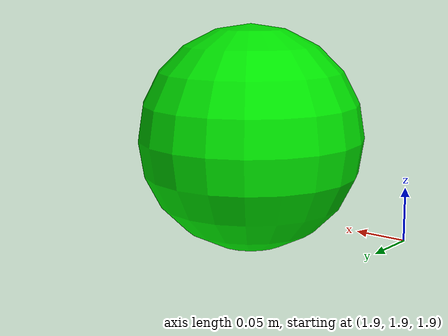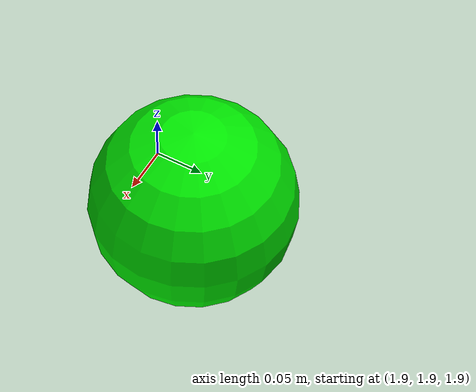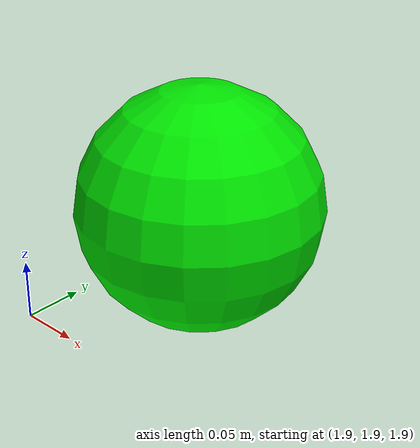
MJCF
<mujoco>
    <worldbody>
        <body pos="2 2 2" euler="0 0 0">
            <joint type="free"/>
            <geom type="sphere" size=".1" rgba="0 .9 0 1"/>
        </body>

    </worldbody>
</mujoco>
